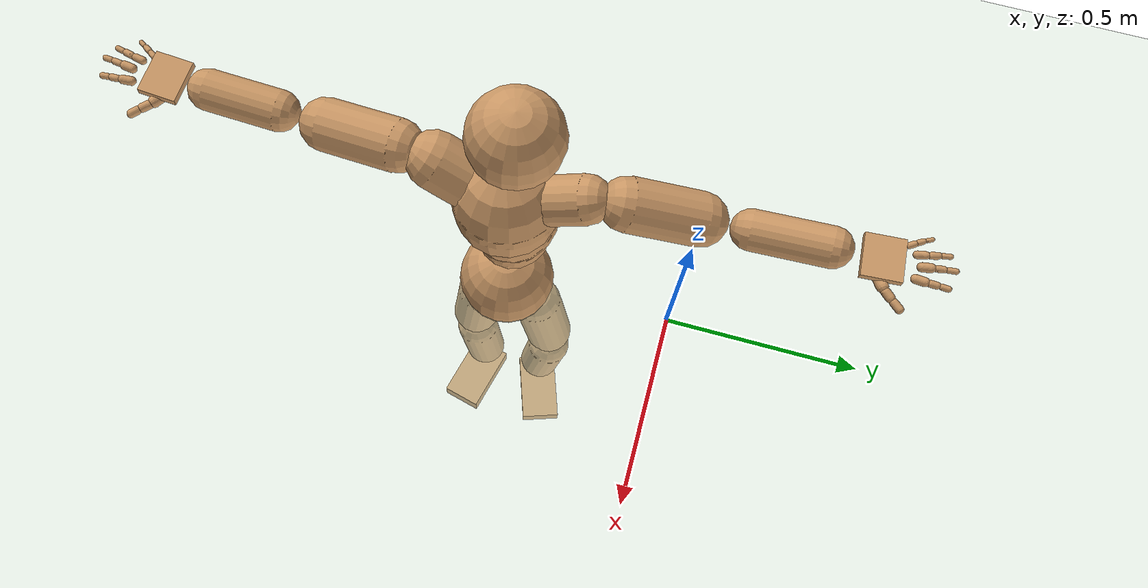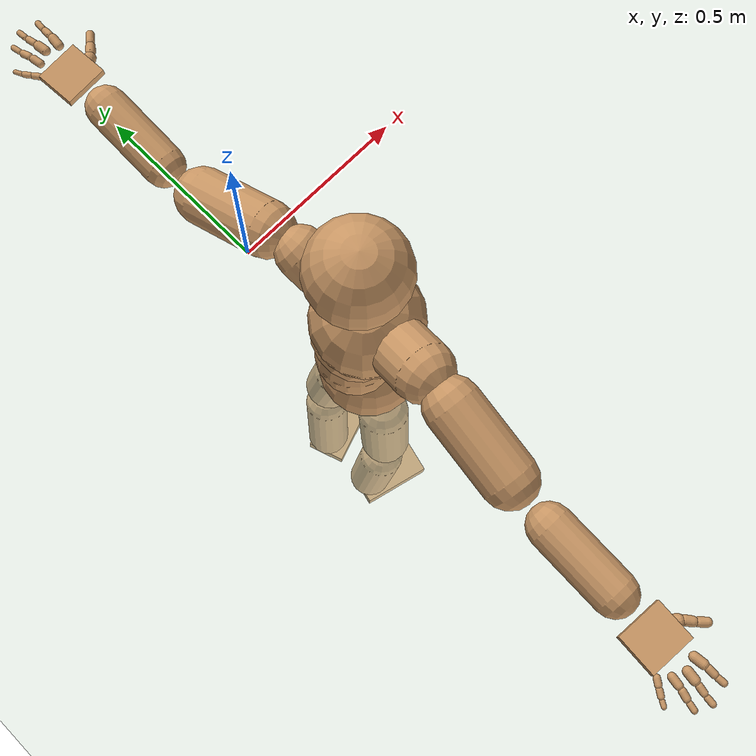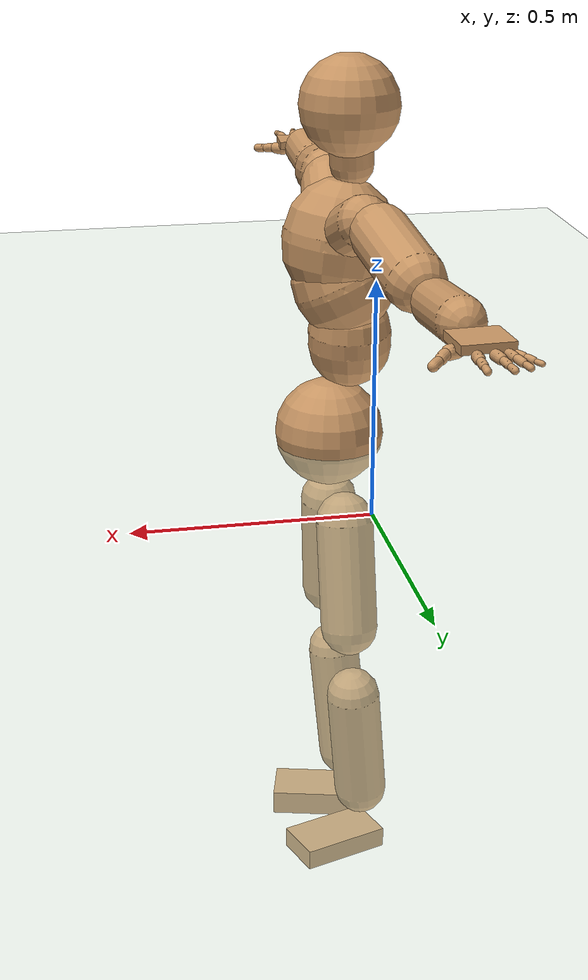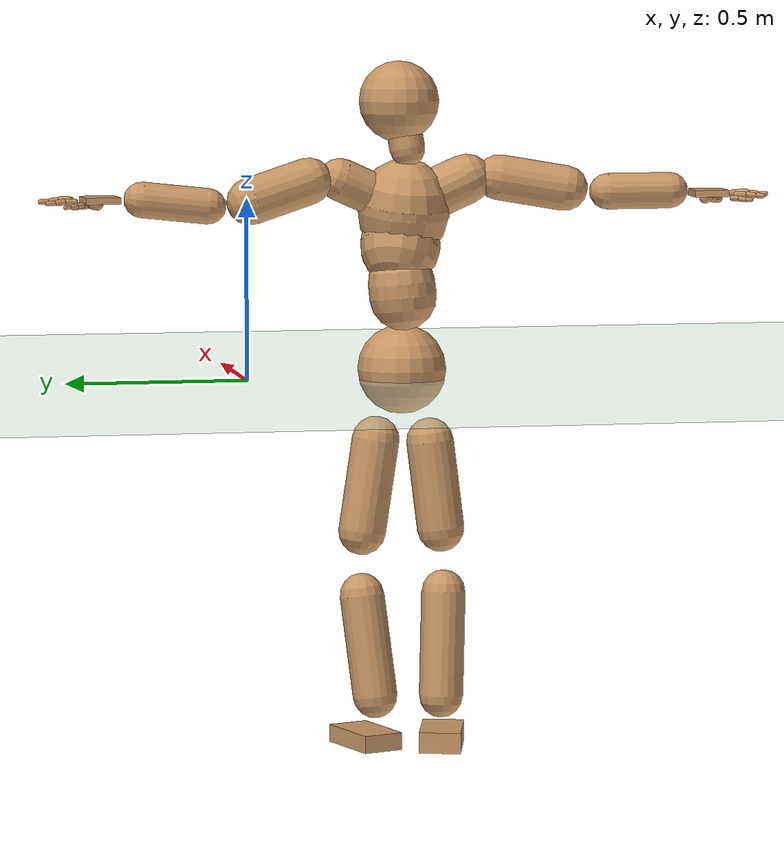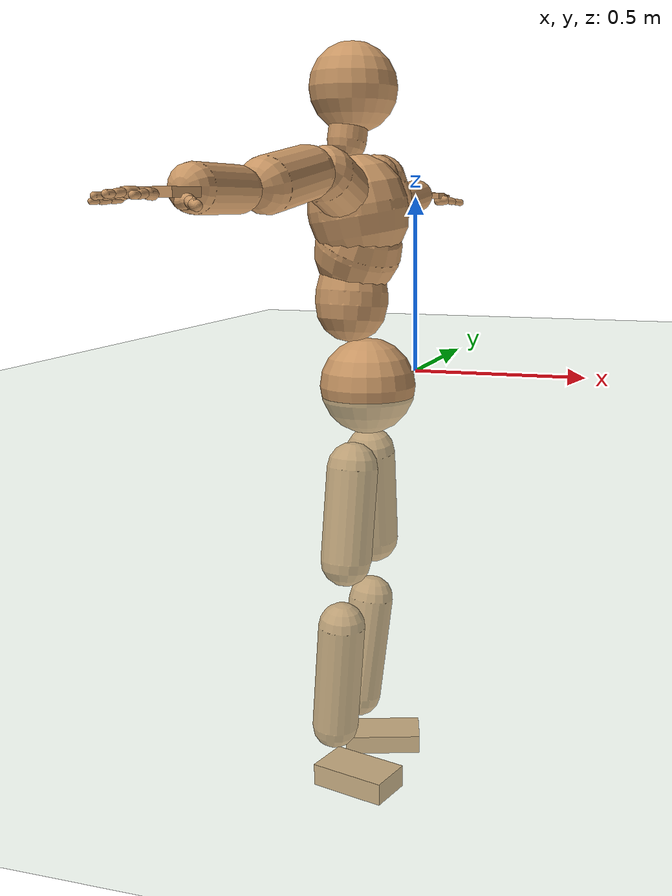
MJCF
<mujoco model="humanoid">
  <compiler coordinate="local" angle="radian"/>
  <default>
    <joint damping="0.0" armature="0.01" stiffness="0.0" limited="true"/>
    <geom conaffinity="1" condim="3" contype="7" margin="0.001" rgba="0.8 0.6 .4 1"/>
  </default>
  <asset>
    <texture type="skybox" builtin="gradient" rgb1=".4 .5 .6" rgb2="0 0 0" width="100" height="100"/>
    <texture builtin="flat" height="1278" mark="cross" markrgb="1 1 1" name="texgeom" random="0.01" rgb1="0.8 0.6 0.4" rgb2="0.8 0.6 0.4" type="cube" width="127"/>
    <texture builtin="checker" height="100" name="texplane" rgb1="0 0 0" rgb2="0.8 0.8 0.8" type="2d" width="100"/>
    <material name="MatPlane" reflectance="0.5" shininess="1" specular="1" texrepeat="60 60" texture="texplane"/>
    <material name="geom" texture="texgeom" texuniform="true"/>
  </asset>
  <worldbody>
    <light cutoff="100" diffuse="1 1 1" dir="-0 0 -1.3" directional="true" exponent="1" pos="0 0 1.3" specular=".1 .1 .1"/>
    <geom conaffinity="1" condim="3" name="floor" pos="0 0 0" rgba="0.8 0.9 0.8 1" size="100 100 .2" type="plane" material="MatPlane"/>
    <body name="Pelvis" pos="0.0019 -0.4314 0.0243">
      <freejoint name="Pelvis"/>
      <geom type="sphere" contype="1" conaffinity="1" density="500" size="0.1231" pos="0.0000 0.0000 0.0000" name="Pelvis"/>
      <body name="L_Hip" pos="-0.0202 0.0647 -0.1082">
        <joint name="L_Hip_x" type="hinge" pos="0 0 0" axis="1 0 0" stiffness="800" damping="80" armature="0.02" range="-180.0000 180.0000"/>
        <joint name="L_Hip_y" type="hinge" pos="0 0 0" axis="0 1 0" stiffness="800" damping="80" armature="0.02" range="-180.0000 180.0000"/>
        <joint name="L_Hip_z" type="hinge" pos="0 0 0" axis="0 0 1" stiffness="800" damping="80" armature="0.02" range="-180.0000 180.0000"/>
        <geom type="capsule" contype="1" conaffinity="1" density="500" fromto="-0.0017 0.0130 -0.0842 -0.0068 0.0519 -0.3370" size="0.0657" name="L_Hip"/>
        <body name="L_Knee" pos="-0.0084 0.0649 -0.4212">
          <joint name="L_Knee_x" type="hinge" pos="0 0 0" axis="1 0 0" stiffness="800" damping="80" armature="0.02" range="-180.0000 180.0000"/>
          <joint name="L_Knee_y" type="hinge" pos="0 0 0" axis="0 1 0" stiffness="800" damping="80" armature="0.02" range="-180.0000 180.0000"/>
          <joint name="L_Knee_z" type="hinge" pos="0 0 0" axis="0 0 1" stiffness="800" damping="80" armature="0.02" range="-180.0000 180.0000"/>
          <geom type="capsule" contype="1" conaffinity="1" density="500" fromto="-0.0094 -0.0104 -0.0928 -0.0374 -0.0417 -0.3711" size="0.0612" name="L_Knee"/>
          <body name="L_Ankle" pos="-0.0468 -0.0521 -0.4639">
            <joint name="L_Ankle_x" type="hinge" pos="0 0 0" axis="1 0 0" stiffness="800" damping="80" armature="0.02" range="-180.0000 180.0000"/>
            <joint name="L_Ankle_y" type="hinge" pos="0 0 0" axis="0 1 0" stiffness="800" damping="80" armature="0.02" range="-180.0000 180.0000"/>
            <joint name="L_Ankle_z" type="hinge" pos="0 0 0" axis="0 0 1" stiffness="800" damping="80" armature="0.02" range="-180.0000 180.0000"/>
            <geom type="box" contype="1" conaffinity="1" density="500" pos="0.0748 0.0253 -0.0344" size="0.1031 0.058 0.0241" quat="0.9868 0.0000 0.0000 0.1621" name="L_Ankle"/>
            <body name="L_Toe" pos="0.1496 0.0505 -0.0688">
              <joint name="L_Toe_x" type="hinge" pos="0 0 0" axis="1 0 0" stiffness="500" damping="50" armature="0.02" range="-180.0000 180.0000"/>
              <joint name="L_Toe_y" type="hinge" pos="0 0 0" axis="0 1 0" stiffness="500" damping="50" armature="0.02" range="-180.0000 180.0000"/>
              <joint name="L_Toe_z" type="hinge" pos="0 0 0" axis="0 0 1" stiffness="500" damping="50" armature="0.02" range="-180.0000 180.0000"/>
              <geom type="box" contype="1" conaffinity="1" density="500" pos="0.0000 0.0000 0.0332" size="0.0011 0.0027 0.0011" quat="0.9861 0.0000 0.0000 0.1659" name="L_Toe"/>
            </body>
          </body>
        </body>
      </body>
      <body name="R_Hip" pos="-0.0133 -0.067 -0.1203">
        <joint name="R_Hip_x" type="hinge" pos="0 0 0" axis="1 0 0" stiffness="800" damping="80" armature="0.02" range="-180.0000 180.0000"/>
        <joint name="R_Hip_y" type="hinge" pos="0 0 0" axis="0 1 0" stiffness="800" damping="80" armature="0.02" range="-180.0000 180.0000"/>
        <joint name="R_Hip_z" type="hinge" pos="0 0 0" axis="0 0 1" stiffness="800" damping="80" armature="0.02" range="-180.0000 180.0000"/>
        <geom type="capsule" contype="1" conaffinity="1" density="500" fromto="-0.0034 -0.0094 -0.0804 -0.0136 -0.0375 -0.3218" size="0.0655" name="R_Hip"/>
        <body name="R_Knee" pos="-0.017 -0.0469 -0.4022">
          <joint name="R_Knee_x" type="hinge" pos="0 0 0" axis="1 0 0" stiffness="800" damping="80" armature="0.02" range="-180.0000 180.0000"/>
          <joint name="R_Knee_y" type="hinge" pos="0 0 0" axis="0 1 0" stiffness="800" damping="80" armature="0.02" range="-180.0000 180.0000"/>
          <joint name="R_Knee_z" type="hinge" pos="0 0 0" axis="0 0 1" stiffness="800" damping="80" armature="0.02" range="-180.0000 180.0000"/>
          <geom type="capsule" contype="1" conaffinity="1" density="500" fromto="-0.0089 0.0039 -0.0958 -0.0354 0.0156 -0.3832" size="0.0608" name="R_Knee"/>
          <body name="R_Ankle" pos="-0.0443 0.0195 -0.479">
            <joint name="R_Ankle_x" type="hinge" pos="0 0 0" axis="1 0 0" stiffness="800" damping="80" armature="0.02" range="-180.0000 180.0000"/>
            <joint name="R_Ankle_y" type="hinge" pos="0 0 0" axis="0 1 0" stiffness="800" damping="80" armature="0.02" range="-180.0000 180.0000"/>
            <joint name="R_Ankle_z" type="hinge" pos="0 0 0" axis="0 0 1" stiffness="800" damping="80" armature="0.02" range="-180.0000 180.0000"/>
            <geom type="box" contype="1" conaffinity="1" density="500" pos="0.0783 -0.0199 -0.0333" size="0.1031 0.058 0.0289" quat="0.9923 0.0000 0.0000 -0.1241" name="R_Ankle"/>
            <body name="R_Toe" pos="0.1566 -0.0398 -0.0667">
              <joint name="R_Toe_x" type="hinge" pos="0 0 0" axis="1 0 0" stiffness="500" damping="50" armature="0.02" range="-180.0000 180.0000"/>
              <joint name="R_Toe_y" type="hinge" pos="0 0 0" axis="0 1 0" stiffness="500" damping="50" armature="0.02" range="-180.0000 180.0000"/>
              <joint name="R_Toe_z" type="hinge" pos="0 0 0" axis="0 0 1" stiffness="500" damping="50" armature="0.02" range="-180.0000 180.0000"/>
              <geom type="box" contype="1" conaffinity="1" density="500" pos="0.0000 0.0000 0.0275" size="0.0011 0.0027 0.0011" quat="0.9932 0.0000 0.0000 -0.1167" name="R_Toe"/>
            </body>
          </body>
        </body>
      </body>
      <body name="Torso" pos="-0.0463 -0.0019 0.1311">
        <joint name="Torso_x" type="hinge" pos="0 0 0" axis="1 0 0" stiffness="1000" damping="100" armature="0.02" range="-180.0000 180.0000"/>
        <joint name="Torso_y" type="hinge" pos="0 0 0" axis="0 1 0" stiffness="1000" damping="100" armature="0.02" range="-180.0000 180.0000"/>
        <joint name="Torso_z" type="hinge" pos="0 0 0" axis="0 0 1" stiffness="1000" damping="100" armature="0.02" range="-180.0000 180.0000"/>
        <geom type="capsule" contype="1" conaffinity="1" density="500" fromto="0.0035 0.0107 0.1089 0.0023 0.0071 0.0726" size="0.0929" name="Torso"/>
        <body name="Spine" pos="0.0058 0.0178 0.1816">
          <joint name="Spine_x" type="hinge" pos="0 0 0" axis="1 0 0" stiffness="1000" damping="100" armature="0.02" range="-180.0000 180.0000"/>
          <joint name="Spine_y" type="hinge" pos="0 0 0" axis="0 1 0" stiffness="1000" damping="100" armature="0.02" range="-180.0000 180.0000"/>
          <joint name="Spine_z" type="hinge" pos="0 0 0" axis="0 0 1" stiffness="1000" damping="100" armature="0.02" range="-180.0000 180.0000"/>
          <geom type="capsule" contype="1" conaffinity="1" density="500" fromto="0.0183 -0.0089 0.0405 0.0122 -0.0059 0.0270" size="0.1104" name="Spine"/>
          <body name="Chest" pos="0.0305 -0.0148 0.0675">
            <joint name="Chest_x" type="hinge" pos="0 0 0" axis="1 0 0" stiffness="1000" damping="100" armature="0.02" range="-180.0000 180.0000"/>
            <joint name="Chest_y" type="hinge" pos="0 0 0" axis="0 1 0" stiffness="1000" damping="100" armature="0.02" range="-180.0000 180.0000"/>
            <joint name="Chest_z" type="hinge" pos="0 0 0" axis="0 0 1" stiffness="1000" damping="100" armature="0.02" range="-180.0000 180.0000"/>
            <geom type="capsule" contype="1" conaffinity="1" density="500" fromto="-0.0120 -0.0043 0.0749 -0.0080 -0.0028 0.0499" size="0.1262" name="Chest"/>
            <body name="Neck" pos="-0.0399 -0.0132 0.1962">
              <joint name="Neck_x" type="hinge" pos="0 0 0" axis="1 0 0" stiffness="500" damping="50" armature="0.02" range="-180.0000 180.0000"/>
              <joint name="Neck_y" type="hinge" pos="0 0 0" axis="0 1 0" stiffness="500" damping="50" armature="0.02" range="-180.0000 180.0000"/>
              <joint name="Neck_z" type="hinge" pos="0 0 0" axis="0 0 1" stiffness="500" damping="50" armature="0.02" range="-180.0000 180.0000"/>
              <geom type="capsule" contype="1" conaffinity="1" density="500" fromto="0.0029 0.0054 0.0325 0.0115 0.0215 0.1299" size="0.0488" name="Neck"/>
              <body name="Head" pos="0.0143 0.0269 0.1623">
                <joint name="Head_x" type="hinge" pos="0 0 0" axis="1 0 0" stiffness="500" damping="50" armature="0.02" range="-180.0000 180.0000"/>
                <joint name="Head_y" type="hinge" pos="0 0 0" axis="0 1 0" stiffness="500" damping="50" armature="0.02" range="-180.0000 180.0000"/>
                <joint name="Head_z" type="hinge" pos="0 0 0" axis="0 0 1" stiffness="500" damping="50" armature="0.02" range="-180.0000 180.0000"/>
                <geom type="sphere" contype="1" conaffinity="1" density="500" size="0.1103" pos="0.0000 0.0000 0.0000" name="Head"/>
              </body>
            </body>
            <body name="L_Thorax" pos="-0.0088 0.0474 0.0886">
              <joint name="L_Thorax_x" type="hinge" pos="0 0 0" axis="1 0 0" stiffness="500" damping="50" armature="0.02" range="-180.0000 180.0000"/>
              <joint name="L_Thorax_y" type="hinge" pos="0 0 0" axis="0 1 0" stiffness="500" damping="50" armature="0.02" range="-180.0000 180.0000"/>
              <joint name="L_Thorax_z" type="hinge" pos="0 0 0" axis="0 0 1" stiffness="500" damping="50" armature="0.02" range="-180.0000 180.0000"/>
              <geom type="capsule" contype="1" conaffinity="1" density="500" fromto="-0.0036 0.0325 0.0145 -0.0145 0.1301 0.0579" size="0.0585" name="L_Thorax"/>
              <body name="L_Shoulder" pos="-0.0182 0.1626 0.0724">
                <joint name="L_Shoulder_x" type="hinge" pos="0 0 0" axis="1 0 0" stiffness="500" damping="50" armature="0.02" range="-180.0000 180.0000"/>
                <joint name="L_Shoulder_y" type="hinge" pos="0 0 0" axis="0 1 0" stiffness="500" damping="50" armature="0.02" range="-180.0000 180.0000"/>
                <joint name="L_Shoulder_z" type="hinge" pos="0 0 0" axis="0 0 1" stiffness="500" damping="50" armature="0.02" range="-180.0000 180.0000"/>
                <geom type="capsule" contype="1" conaffinity="1" density="500" fromto="-0.0106 0.0556 -0.0175 -0.0424 0.2224 -0.0698" size="0.064" name="L_Shoulder"/>
                <body name="L_Elbow" pos="-0.053 0.278 -0.0873">
                  <joint name="L_Elbow_x" type="hinge" pos="0 0 0" axis="1 0 0" stiffness="500" damping="50" armature="0.02" range="-720.0000 720.0000"/>
                  <joint name="L_Elbow_y" type="hinge" pos="0 0 0" axis="0 1 0" stiffness="500" damping="50" armature="0.02" range="-720.0000 720.0000"/>
                  <joint name="L_Elbow_z" type="hinge" pos="0 0 0" axis="0 0 1" stiffness="500" damping="50" armature="0.02" range="-720.0000 720.0000"/>
                  <geom type="capsule" contype="1" conaffinity="1" density="500" fromto="0.0004 0.0603 0.0065 0.0018 0.2412 0.0260" size="0.0485" name="L_Elbow"/>
                  <body name="L_Wrist" pos="0.0022 0.3015 0.0326">
                    <joint name="L_Wrist_x" type="hinge" pos="0 0 0" axis="1 0 0" stiffness="300" damping="30" armature="0.02" range="-180.0000 180.0000"/>
                    <joint name="L_Wrist_y" type="hinge" pos="0 0 0" axis="0 1 0" stiffness="300" damping="30" armature="0.02" range="-180.0000 180.0000"/>
                    <joint name="L_Wrist_z" type="hinge" pos="0 0 0" axis="0 0 1" stiffness="300" damping="30" armature="0.02" range="-180.0000 180.0000"/>
                    <geom type="box" contype="1" conaffinity="1" density="500" pos="-0.0034 0.0523 -0.0062" size="0.0473 0.0521 0.0092" quat="0.7294 0.0000 0.0000 -0.6841" name="L_Wrist"/>
                    <body name="L_Index1" pos="0.0236 0.1223 -0.0088">
                      <joint name="L_Index1_x" type="hinge" pos="0 0 0" axis="1 0 0" stiffness="100" damping="10" armature="0.02" range="-180.0000 180.0000"/>
                      <joint name="L_Index1_y" type="hinge" pos="0 0 0" axis="0 1 0" stiffness="100" damping="10" armature="0.02" range="-180.0000 180.0000"/>
                      <joint name="L_Index1_z" type="hinge" pos="0 0 0" axis="0 0 1" stiffness="100" damping="10" armature="0.02" range="-180.0000 180.0000"/>
                      <geom type="capsule" contype="1" conaffinity="1" density="500" fromto="0.0007 0.0071 0.0004 0.0029 0.0286 0.0017" size="0.0107" name="L_Index1"/>
                      <body name="L_Index2" pos="0.0036 0.0357 0.0021">
                        <joint name="L_Index2_x" type="hinge" pos="0 0 0" axis="1 0 0" stiffness="100" damping="10" armature="0.02" range="-180.0000 180.0000"/>
                        <joint name="L_Index2_y" type="hinge" pos="0 0 0" axis="0 1 0" stiffness="100" damping="10" armature="0.02" range="-180.0000 180.0000"/>
                        <joint name="L_Index2_z" type="hinge" pos="0 0 0" axis="0 0 1" stiffness="100" damping="10" armature="0.02" range="-180.0000 180.0000"/>
                        <geom type="capsule" contype="1" conaffinity="1" density="500" fromto="-0.0001 0.0050 -0.0006 -0.0004 0.0200 -0.0023" size="0.0085" name="L_Index2"/>
                        <body name="L_Index3" pos="-0.0005 0.025 -0.0028">
                          <joint name="L_Index3_x" type="hinge" pos="0 0 0" axis="1 0 0" stiffness="100" damping="10" armature="0.02" range="-180.0000 180.0000"/>
                          <joint name="L_Index3_y" type="hinge" pos="0 0 0" axis="0 1 0" stiffness="100" damping="10" armature="0.02" range="-180.0000 180.0000"/>
                          <joint name="L_Index3_z" type="hinge" pos="0 0 0" axis="0 0 1" stiffness="100" damping="10" armature="0.02" range="-180.0000 180.0000"/>
                          <geom type="capsule" contype="1" conaffinity="1" density="500" fromto="0.0003 0.0054 -0.0002 0.0012 0.0216 -0.0007" size="0.0072" name="L_Index3"/>
                        </body>
                      </body>
                    </body>
                    <body name="L_Middle1" pos="-0.0046 0.1312 -0.0055">
                      <joint name="L_Middle1_x" type="hinge" pos="0 0 0" axis="1 0 0" stiffness="100" damping="10" armature="0.02" range="-180.0000 180.0000"/>
                      <joint name="L_Middle1_y" type="hinge" pos="0 0 0" axis="0 1 0" stiffness="100" damping="10" armature="0.02" range="-180.0000 180.0000"/>
                      <joint name="L_Middle1_z" type="hinge" pos="0 0 0" axis="0 0 1" stiffness="100" damping="10" armature="0.02" range="-180.0000 180.0000"/>
                      <geom type="capsule" contype="1" conaffinity="1" density="500" fromto="-0.0010 0.0068 0.0002 -0.0040 0.0273 0.0006" size="0.0109" name="L_Middle1"/>
                      <body name="L_Middle2" pos="-0.005 0.0341 0.0008">
                        <joint name="L_Middle2_x" type="hinge" pos="0 0 0" axis="1 0 0" stiffness="100" damping="10" armature="0.02" range="-180.0000 180.0000"/>
                        <joint name="L_Middle2_y" type="hinge" pos="0 0 0" axis="0 1 0" stiffness="100" damping="10" armature="0.02" range="-180.0000 180.0000"/>
                        <joint name="L_Middle2_z" type="hinge" pos="0 0 0" axis="0 0 1" stiffness="100" damping="10" armature="0.02" range="-180.0000 180.0000"/>
                        <geom type="capsule" contype="1" conaffinity="1" density="500" fromto="-0.0010 0.0052 -0.0006 -0.0039 0.0209 -0.0022" size="0.008" name="L_Middle2"/>
                        <body name="L_Middle3" pos="-0.0049 0.0261 -0.0028">
                          <joint name="L_Middle3_x" type="hinge" pos="0 0 0" axis="1 0 0" stiffness="100" damping="10" armature="0.02" range="-180.0000 180.0000"/>
                          <joint name="L_Middle3_y" type="hinge" pos="0 0 0" axis="0 1 0" stiffness="100" damping="10" armature="0.02" range="-180.0000 180.0000"/>
                          <joint name="L_Middle3_z" type="hinge" pos="0 0 0" axis="0 0 1" stiffness="100" damping="10" armature="0.02" range="-180.0000 180.0000"/>
                          <geom type="capsule" contype="1" conaffinity="1" density="500" fromto="-0.0006 0.0056 -0.0002 -0.0023 0.0225 -0.0006" size="0.0069" name="L_Middle3"/>
                        </body>
                      </body>
                    </body>
                    <body name="L_Pinky1" pos="-0.0516 0.1022 -0.016">
                      <joint name="L_Pinky1_x" type="hinge" pos="0 0 0" axis="1 0 0" stiffness="100" damping="10" armature="0.02" range="-180.0000 180.0000"/>
                      <joint name="L_Pinky1_y" type="hinge" pos="0 0 0" axis="0 1 0" stiffness="100" damping="10" armature="0.02" range="-180.0000 180.0000"/>
                      <joint name="L_Pinky1_z" type="hinge" pos="0 0 0" axis="0 0 1" stiffness="100" damping="10" armature="0.02" range="-180.0000 180.0000"/>
                      <geom type="capsule" contype="1" conaffinity="1" density="500" fromto="-0.0026 0.0037 -0.0004 -0.0103 0.0147 -0.0015" size="0.0076" name="L_Pinky1"/>
                      <body name="L_Pinky2" pos="-0.0128 0.0184 -0.0018">
                        <joint name="L_Pinky2_x" type="hinge" pos="0 0 0" axis="1 0 0" stiffness="100" damping="10" armature="0.02" range="-180.0000 180.0000"/>
                        <joint name="L_Pinky2_y" type="hinge" pos="0 0 0" axis="0 1 0" stiffness="100" damping="10" armature="0.02" range="-180.0000 180.0000"/>
                        <joint name="L_Pinky2_z" type="hinge" pos="0 0 0" axis="0 0 1" stiffness="100" damping="10" armature="0.02" range="-180.0000 180.0000"/>
                        <geom type="capsule" contype="1" conaffinity="1" density="500" fromto="-0.0024 0.0036 -0.0005 -0.0095 0.0143 -0.0019" size="0.0071" name="L_Pinky2"/>
                        <body name="L_Pinky3" pos="-0.0118 0.0179 -0.0023">
                          <joint name="L_Pinky3_x" type="hinge" pos="0 0 0" axis="1 0 0" stiffness="100" damping="10" armature="0.02" range="-180.0000 180.0000"/>
                          <joint name="L_Pinky3_y" type="hinge" pos="0 0 0" axis="0 1 0" stiffness="100" damping="10" armature="0.02" range="-180.0000 180.0000"/>
                          <joint name="L_Pinky3_z" type="hinge" pos="0 0 0" axis="0 0 1" stiffness="100" damping="10" armature="0.02" range="-180.0000 180.0000"/>
                          <geom type="capsule" contype="1" conaffinity="1" density="500" fromto="-0.0020 0.0040 -0.0001 -0.0079 0.0159 -0.0003" size="0.0054" name="L_Pinky3"/>
                        </body>
                      </body>
                    </body>
                    <body name="L_Ring1" pos="-0.0326 0.1177 -0.0091">
                      <joint name="L_Ring1_x" type="hinge" pos="0 0 0" axis="1 0 0" stiffness="100" damping="10" armature="0.02" range="-180.0000 180.0000"/>
                      <joint name="L_Ring1_y" type="hinge" pos="0 0 0" axis="0 1 0" stiffness="100" damping="10" armature="0.02" range="-180.0000 180.0000"/>
                      <joint name="L_Ring1_z" type="hinge" pos="0 0 0" axis="0 0 1" stiffness="100" damping="10" armature="0.02" range="-180.0000 180.0000"/>
                      <geom type="capsule" contype="1" conaffinity="1" density="500" fromto="-0.0011 0.0064 0.0002 -0.0045 0.0256 0.0008" size="0.0092" name="L_Ring1"/>
                      <body name="L_Ring2" pos="-0.0056 0.032 0.001">
                        <joint name="L_Ring2_x" type="hinge" pos="0 0 0" axis="1 0 0" stiffness="100" damping="10" armature="0.02" range="-180.0000 180.0000"/>
                        <joint name="L_Ring2_y" type="hinge" pos="0 0 0" axis="0 1 0" stiffness="100" damping="10" armature="0.02" range="-180.0000 180.0000"/>
                        <joint name="L_Ring2_z" type="hinge" pos="0 0 0" axis="0 0 1" stiffness="100" damping="10" armature="0.02" range="-180.0000 180.0000"/>
                        <geom type="capsule" contype="1" conaffinity="1" density="500" fromto="-0.0015 0.0051 -0.0005 -0.0059 0.0205 -0.0021" size="0.0084" name="L_Ring2"/>
                        <body name="L_Ring3" pos="-0.0074 0.0256 -0.0026">
                          <joint name="L_Ring3_x" type="hinge" pos="0 0 0" axis="1 0 0" stiffness="100" damping="10" armature="0.02" range="-180.0000 180.0000"/>
                          <joint name="L_Ring3_y" type="hinge" pos="0 0 0" axis="0 1 0" stiffness="100" damping="10" armature="0.02" range="-180.0000 180.0000"/>
                          <joint name="L_Ring3_z" type="hinge" pos="0 0 0" axis="0 0 1" stiffness="100" damping="10" armature="0.02" range="-180.0000 180.0000"/>
                          <geom type="capsule" contype="1" conaffinity="1" density="500" fromto="-0.0011 0.0055 -0.0001 -0.0043 0.0221 -0.0005" size="0.0065" name="L_Ring3"/>
                        </body>
                      </body>
                    </body>
                    <body name="L_Thumb1" pos="0.0317 0.0495 -0.0222">
                      <joint name="L_Thumb1_x" type="hinge" pos="0 0 0" axis="1 0 0" stiffness="100" damping="10" armature="0.02" range="-180.0000 180.0000"/>
                      <joint name="L_Thumb1_y" type="hinge" pos="0 0 0" axis="0 1 0" stiffness="100" damping="10" armature="0.02" range="-180.0000 180.0000"/>
                      <joint name="L_Thumb1_z" type="hinge" pos="0 0 0" axis="0 0 1" stiffness="100" damping="10" armature="0.02" range="-180.0000 180.0000"/>
                      <geom type="capsule" contype="1" conaffinity="1" density="500" fromto="0.0060 0.0038 0.0004 0.0239 0.0154 0.0016" size="0.0144" name="L_Thumb1"/>
                      <body name="L_Thumb2" pos="0.0299 0.0192 0.0021">
                        <joint name="L_Thumb2_x" type="hinge" pos="0 0 0" axis="1 0 0" stiffness="100" damping="10" armature="0.02" range="-180.0000 180.0000"/>
                        <joint name="L_Thumb2_y" type="hinge" pos="0 0 0" axis="0 1 0" stiffness="100" damping="10" armature="0.02" range="-180.0000 180.0000"/>
                        <joint name="L_Thumb2_z" type="hinge" pos="0 0 0" axis="0 0 1" stiffness="100" damping="10" armature="0.02" range="-180.0000 180.0000"/>
                        <geom type="capsule" contype="1" conaffinity="1" density="500" fromto="0.0037 0.0046 -0.0010 0.0147 0.0185 -0.0041" size="0.0112" name="L_Thumb2"/>
                        <body name="L_Thumb3" pos="0.0183 0.0231 -0.0052">
                          <joint name="L_Thumb3_x" type="hinge" pos="0 0 0" axis="1 0 0" stiffness="100" damping="10" armature="0.02" range="-180.0000 180.0000"/>
                          <joint name="L_Thumb3_y" type="hinge" pos="0 0 0" axis="0 1 0" stiffness="100" damping="10" armature="0.02" range="-180.0000 180.0000"/>
                          <joint name="L_Thumb3_z" type="hinge" pos="0 0 0" axis="0 0 1" stiffness="100" damping="10" armature="0.02" range="-180.0000 180.0000"/>
                          <geom type="capsule" contype="1" conaffinity="1" density="500" fromto="0.0041 0.0050 -0.0006 0.0163 0.0201 -0.0025" size="0.0101" name="L_Thumb3"/>
                        </body>
                      </body>
                    </body>
                  </body>
                </body>
              </body>
            </body>
            <body name="R_Thorax" pos="-0.0115 -0.0556 0.0897">
              <joint name="R_Thorax_x" type="hinge" pos="0 0 0" axis="1 0 0" stiffness="500" damping="50" armature="0.02" range="-180.0000 180.0000"/>
              <joint name="R_Thorax_y" type="hinge" pos="0 0 0" axis="0 1 0" stiffness="500" damping="50" armature="0.02" range="-180.0000 180.0000"/>
              <joint name="R_Thorax_z" type="hinge" pos="0 0 0" axis="0 0 1" stiffness="500" damping="50" armature="0.02" range="-180.0000 180.0000"/>
              <geom type="capsule" contype="1" conaffinity="1" density="500" fromto="-0.0038 -0.0298 0.0138 -0.0151 -0.1191 0.0552" size="0.0692" name="R_Thorax"/>
              <body name="R_Shoulder" pos="-0.0188 -0.1489 0.069">
                <joint name="R_Shoulder_x" type="hinge" pos="0 0 0" axis="1 0 0" stiffness="500" damping="50" armature="0.02" range="-180.0000 180.0000"/>
                <joint name="R_Shoulder_y" type="hinge" pos="0 0 0" axis="0 1 0" stiffness="500" damping="50" armature="0.02" range="-180.0000 180.0000"/>
                <joint name="R_Shoulder_z" type="hinge" pos="0 0 0" axis="0 0 1" stiffness="500" damping="50" armature="0.02" range="-180.0000 180.0000"/>
                <geom type="capsule" contype="1" conaffinity="1" density="500" fromto="-0.0070 -0.0600 -0.0101 -0.0279 -0.2402 -0.0403" size="0.0631" name="R_Shoulder"/>
                <body name="R_Elbow" pos="-0.0349 -0.3002 -0.0504">
                  <joint name="R_Elbow_x" type="hinge" pos="0 0 0" axis="1 0 0" stiffness="500" damping="50" armature="0.02" range="-720.0000 720.0000"/>
                  <joint name="R_Elbow_y" type="hinge" pos="0 0 0" axis="0 1 0" stiffness="500" damping="50" armature="0.02" range="-720.0000 720.0000"/>
                  <joint name="R_Elbow_z" type="hinge" pos="0 0 0" axis="0 0 1" stiffness="500" damping="50" armature="0.02" range="-720.0000 720.0000"/>
                  <geom type="capsule" contype="1" conaffinity="1" density="500" fromto="-0.0023 -0.0584 0.0004 -0.0094 -0.2336 0.0018" size="0.0497" name="R_Elbow"/>
                  <body name="R_Wrist" pos="-0.0117 -0.292 0.0022">
                    <joint name="R_Wrist_x" type="hinge" pos="0 0 0" axis="1 0 0" stiffness="300" damping="30" armature="0.02" range="-180.0000 180.0000"/>
                    <joint name="R_Wrist_y" type="hinge" pos="0 0 0" axis="0 1 0" stiffness="300" damping="30" armature="0.02" range="-180.0000 180.0000"/>
                    <joint name="R_Wrist_z" type="hinge" pos="0 0 0" axis="0 0 1" stiffness="300" damping="30" armature="0.02" range="-180.0000 180.0000"/>
                    <geom type="box" contype="1" conaffinity="1" density="500" pos="-0.0038 -0.0518 -0.0083" size="0.0473 0.0536 0.0095" quat="0.7325 0.0000 0.0000 0.6808" name="R_Wrist"/>
                    <body name="R_Index1" pos="0.0227 -0.1214 -0.013">
                      <joint name="R_Index1_x" type="hinge" pos="0 0 0" axis="1 0 0" stiffness="100" damping="10" armature="0.02" range="-180.0000 180.0000"/>
                      <joint name="R_Index1_y" type="hinge" pos="0 0 0" axis="0 1 0" stiffness="100" damping="10" armature="0.02" range="-180.0000 180.0000"/>
                      <joint name="R_Index1_z" type="hinge" pos="0 0 0" axis="0 0 1" stiffness="100" damping="10" armature="0.02" range="-180.0000 180.0000"/>
                      <geom type="capsule" contype="1" conaffinity="1" density="500" fromto="0.0007 -0.0071 0.0004 0.0029 -0.0286 0.0017" size="0.0107" name="R_Index1"/>
                      <body name="R_Index2" pos="0.0037 -0.0357 0.0021">
                        <joint name="R_Index2_x" type="hinge" pos="0 0 0" axis="1 0 0" stiffness="100" damping="10" armature="0.02" range="-180.0000 180.0000"/>
                        <joint name="R_Index2_y" type="hinge" pos="0 0 0" axis="0 1 0" stiffness="100" damping="10" armature="0.02" range="-180.0000 180.0000"/>
                        <joint name="R_Index2_z" type="hinge" pos="0 0 0" axis="0 0 1" stiffness="100" damping="10" armature="0.02" range="-180.0000 180.0000"/>
                        <geom type="capsule" contype="1" conaffinity="1" density="500" fromto="-0.0001 -0.0050 -0.0006 -0.0004 -0.0200 -0.0023" size="0.0085" name="R_Index2"/>
                        <body name="R_Index3" pos="-0.0005 -0.025 -0.0028">
                          <joint name="R_Index3_x" type="hinge" pos="0 0 0" axis="1 0 0" stiffness="100" damping="10" armature="0.02" range="-180.0000 180.0000"/>
                          <joint name="R_Index3_y" type="hinge" pos="0 0 0" axis="0 1 0" stiffness="100" damping="10" armature="0.02" range="-180.0000 180.0000"/>
                          <joint name="R_Index3_z" type="hinge" pos="0 0 0" axis="0 0 1" stiffness="100" damping="10" armature="0.02" range="-180.0000 180.0000"/>
                          <geom type="capsule" contype="1" conaffinity="1" density="500" fromto="0.0003 -0.0046 -0.0002 0.0012 -0.0184 -0.0007" size="0.0075" name="R_Index3"/>
                        </body>
                      </body>
                    </body>
                    <body name="R_Middle1" pos="-0.0055 -0.1303 -0.0097">
                      <joint name="R_Middle1_x" type="hinge" pos="0 0 0" axis="1 0 0" stiffness="100" damping="10" armature="0.02" range="-180.0000 180.0000"/>
                      <joint name="R_Middle1_y" type="hinge" pos="0 0 0" axis="0 1 0" stiffness="100" damping="10" armature="0.02" range="-180.0000 180.0000"/>
                      <joint name="R_Middle1_z" type="hinge" pos="0 0 0" axis="0 0 1" stiffness="100" damping="10" armature="0.02" range="-180.0000 180.0000"/>
                      <geom type="capsule" contype="1" conaffinity="1" density="500" fromto="-0.0010 -0.0068 0.0002 -0.0040 -0.0273 0.0006" size="0.0109" name="R_Middle1"/>
                      <body name="R_Middle2" pos="-0.005 -0.0341 0.0008">
                        <joint name="R_Middle2_x" type="hinge" pos="0 0 0" axis="1 0 0" stiffness="100" damping="10" armature="0.02" range="-180.0000 180.0000"/>
                        <joint name="R_Middle2_y" type="hinge" pos="0 0 0" axis="0 1 0" stiffness="100" damping="10" armature="0.02" range="-180.0000 180.0000"/>
                        <joint name="R_Middle2_z" type="hinge" pos="0 0 0" axis="0 0 1" stiffness="100" damping="10" armature="0.02" range="-180.0000 180.0000"/>
                        <geom type="capsule" contype="1" conaffinity="1" density="500" fromto="-0.0010 -0.0052 -0.0006 -0.0039 -0.0209 -0.0022" size="0.008" name="R_Middle2"/>
                        <body name="R_Middle3" pos="-0.0049 -0.0261 -0.0028">
                          <joint name="R_Middle3_x" type="hinge" pos="0 0 0" axis="1 0 0" stiffness="100" damping="10" armature="0.02" range="-180.0000 180.0000"/>
                          <joint name="R_Middle3_y" type="hinge" pos="0 0 0" axis="0 1 0" stiffness="100" damping="10" armature="0.02" range="-180.0000 180.0000"/>
                          <joint name="R_Middle3_z" type="hinge" pos="0 0 0" axis="0 0 1" stiffness="100" damping="10" armature="0.02" range="-180.0000 180.0000"/>
                          <geom type="capsule" contype="1" conaffinity="1" density="500" fromto="-0.0006 -0.0048 -0.0002 -0.0023 -0.0193 -0.0006" size="0.0072" name="R_Middle3"/>
                        </body>
                      </body>
                    </body>
                    <body name="R_Pinky1" pos="-0.0525 -0.1014 -0.0202">
                      <joint name="R_Pinky1_x" type="hinge" pos="0 0 0" axis="1 0 0" stiffness="100" damping="10" armature="0.02" range="-180.0000 180.0000"/>
                      <joint name="R_Pinky1_y" type="hinge" pos="0 0 0" axis="0 1 0" stiffness="100" damping="10" armature="0.02" range="-180.0000 180.0000"/>
                      <joint name="R_Pinky1_z" type="hinge" pos="0 0 0" axis="0 0 1" stiffness="100" damping="10" armature="0.02" range="-180.0000 180.0000"/>
                      <geom type="capsule" contype="1" conaffinity="1" density="500" fromto="-0.0026 -0.0037 -0.0004 -0.0103 -0.0147 -0.0015" size="0.0076" name="R_Pinky1"/>
                      <body name="R_Pinky2" pos="-0.0128 -0.0184 -0.0018">
                        <joint name="R_Pinky2_x" type="hinge" pos="0 0 0" axis="1 0 0" stiffness="100" damping="10" armature="0.02" range="-180.0000 180.0000"/>
                        <joint name="R_Pinky2_y" type="hinge" pos="0 0 0" axis="0 1 0" stiffness="100" damping="10" armature="0.02" range="-180.0000 180.0000"/>
                        <joint name="R_Pinky2_z" type="hinge" pos="0 0 0" axis="0 0 1" stiffness="100" damping="10" armature="0.02" range="-180.0000 180.0000"/>
                        <geom type="capsule" contype="1" conaffinity="1" density="500" fromto="-0.0024 -0.0036 -0.0005 -0.0095 -0.0143 -0.0019" size="0.0071" name="R_Pinky2"/>
                        <body name="R_Pinky3" pos="-0.0118 -0.0179 -0.0023">
                          <joint name="R_Pinky3_x" type="hinge" pos="0 0 0" axis="1 0 0" stiffness="100" damping="10" armature="0.02" range="-180.0000 180.0000"/>
                          <joint name="R_Pinky3_y" type="hinge" pos="0 0 0" axis="0 1 0" stiffness="100" damping="10" armature="0.02" range="-180.0000 180.0000"/>
                          <joint name="R_Pinky3_z" type="hinge" pos="0 0 0" axis="0 0 1" stiffness="100" damping="10" armature="0.02" range="-180.0000 180.0000"/>
                          <geom type="capsule" contype="1" conaffinity="1" density="500" fromto="-0.0020 -0.0032 -0.0001 -0.0079 -0.0127 -0.0003" size="0.0056" name="R_Pinky3"/>
                        </body>
                      </body>
                    </body>
                    <body name="R_Ring1" pos="-0.0334 -0.1168 -0.0133">
                      <joint name="R_Ring1_x" type="hinge" pos="0 0 0" axis="1 0 0" stiffness="100" damping="10" armature="0.02" range="-180.0000 180.0000"/>
                      <joint name="R_Ring1_y" type="hinge" pos="0 0 0" axis="0 1 0" stiffness="100" damping="10" armature="0.02" range="-180.0000 180.0000"/>
                      <joint name="R_Ring1_z" type="hinge" pos="0 0 0" axis="0 0 1" stiffness="100" damping="10" armature="0.02" range="-180.0000 180.0000"/>
                      <geom type="capsule" contype="1" conaffinity="1" density="500" fromto="-0.0011 -0.0064 0.0002 -0.0045 -0.0256 0.0008" size="0.0092" name="R_Ring1"/>
                      <body name="R_Ring2" pos="-0.0056 -0.032 0.001">
                        <joint name="R_Ring2_x" type="hinge" pos="0 0 0" axis="1 0 0" stiffness="100" damping="10" armature="0.02" range="-180.0000 180.0000"/>
                        <joint name="R_Ring2_y" type="hinge" pos="0 0 0" axis="0 1 0" stiffness="100" damping="10" armature="0.02" range="-180.0000 180.0000"/>
                        <joint name="R_Ring2_z" type="hinge" pos="0 0 0" axis="0 0 1" stiffness="100" damping="10" armature="0.02" range="-180.0000 180.0000"/>
                        <geom type="capsule" contype="1" conaffinity="1" density="500" fromto="-0.0015 -0.0051 -0.0005 -0.0059 -0.0205 -0.0021" size="0.0084" name="R_Ring2"/>
                        <body name="R_Ring3" pos="-0.0074 -0.0256 -0.0026">
                          <joint name="R_Ring3_x" type="hinge" pos="0 0 0" axis="1 0 0" stiffness="100" damping="10" armature="0.02" range="-180.0000 180.0000"/>
                          <joint name="R_Ring3_y" type="hinge" pos="0 0 0" axis="0 1 0" stiffness="100" damping="10" armature="0.02" range="-180.0000 180.0000"/>
                          <joint name="R_Ring3_z" type="hinge" pos="0 0 0" axis="0 0 1" stiffness="100" damping="10" armature="0.02" range="-180.0000 180.0000"/>
                          <geom type="capsule" contype="1" conaffinity="1" density="500" fromto="-0.0011 -0.0047 -0.0001 -0.0043 -0.0189 -0.0005" size="0.0068" name="R_Ring3"/>
                        </body>
                      </body>
                    </body>
                    <body name="R_Thumb1" pos="0.0308 -0.0486 -0.0264">
                      <joint name="R_Thumb1_x" type="hinge" pos="0 0 0" axis="1 0 0" stiffness="100" damping="10" armature="0.02" range="-180.0000 180.0000"/>
                      <joint name="R_Thumb1_y" type="hinge" pos="0 0 0" axis="0 1 0" stiffness="100" damping="10" armature="0.02" range="-180.0000 180.0000"/>
                      <joint name="R_Thumb1_z" type="hinge" pos="0 0 0" axis="0 0 1" stiffness="100" damping="10" armature="0.02" range="-180.0000 180.0000"/>
                      <geom type="capsule" contype="1" conaffinity="1" density="500" fromto="0.0060 -0.0038 0.0004 0.0239 -0.0154 0.0017" size="0.0144" name="R_Thumb1"/>
                      <body name="R_Thumb2" pos="0.0299 -0.0192 0.0021">
                        <joint name="R_Thumb2_x" type="hinge" pos="0 0 0" axis="1 0 0" stiffness="100" damping="10" armature="0.02" range="-180.0000 180.0000"/>
                        <joint name="R_Thumb2_y" type="hinge" pos="0 0 0" axis="0 1 0" stiffness="100" damping="10" armature="0.02" range="-180.0000 180.0000"/>
                        <joint name="R_Thumb2_z" type="hinge" pos="0 0 0" axis="0 0 1" stiffness="100" damping="10" armature="0.02" range="-180.0000 180.0000"/>
                        <geom type="capsule" contype="1" conaffinity="1" density="500" fromto="0.0037 -0.0046 -0.0010 0.0147 -0.0185 -0.0041" size="0.0112" name="R_Thumb2"/>
                        <body name="R_Thumb3" pos="0.0183 -0.0231 -0.0052">
                          <joint name="R_Thumb3_x" type="hinge" pos="0 0 0" axis="1 0 0" stiffness="100" damping="10" armature="0.02" range="-180.0000 180.0000"/>
                          <joint name="R_Thumb3_y" type="hinge" pos="0 0 0" axis="0 1 0" stiffness="100" damping="10" armature="0.02" range="-180.0000 180.0000"/>
                          <joint name="R_Thumb3_z" type="hinge" pos="0 0 0" axis="0 0 1" stiffness="100" damping="10" armature="0.02" range="-180.0000 180.0000"/>
                          <geom type="capsule" contype="1" conaffinity="1" density="500" fromto="0.0041 -0.0042 -0.0006 0.0163 -0.0169 -0.0025" size="0.0103" name="R_Thumb3"/>
                        </body>
                      </body>
                    </body>
                  </body>
                </body>
              </body>
            </body>
          </body>
        </body>
      </body>
    </body>
  </worldbody>
  <actuator>
    <motor name="L_Hip_x" joint="L_Hip_x" gear="500"/>
    <motor name="L_Hip_y" joint="L_Hip_y" gear="500"/>
    <motor name="L_Hip_z" joint="L_Hip_z" gear="500"/>
    <motor name="L_Knee_x" joint="L_Knee_x" gear="500"/>
    <motor name="L_Knee_y" joint="L_Knee_y" gear="500"/>
    <motor name="L_Knee_z" joint="L_Knee_z" gear="500"/>
    <motor name="L_Ankle_x" joint="L_Ankle_x" gear="500"/>
    <motor name="L_Ankle_y" joint="L_Ankle_y" gear="500"/>
    <motor name="L_Ankle_z" joint="L_Ankle_z" gear="500"/>
    <motor name="L_Toe_x" joint="L_Toe_x" gear="500"/>
    <motor name="L_Toe_y" joint="L_Toe_y" gear="500"/>
    <motor name="L_Toe_z" joint="L_Toe_z" gear="500"/>
    <motor name="R_Hip_x" joint="R_Hip_x" gear="500"/>
    <motor name="R_Hip_y" joint="R_Hip_y" gear="500"/>
    <motor name="R_Hip_z" joint="R_Hip_z" gear="500"/>
    <motor name="R_Knee_x" joint="R_Knee_x" gear="500"/>
    <motor name="R_Knee_y" joint="R_Knee_y" gear="500"/>
    <motor name="R_Knee_z" joint="R_Knee_z" gear="500"/>
    <motor name="R_Ankle_x" joint="R_Ankle_x" gear="500"/>
    <motor name="R_Ankle_y" joint="R_Ankle_y" gear="500"/>
    <motor name="R_Ankle_z" joint="R_Ankle_z" gear="500"/>
    <motor name="R_Toe_x" joint="R_Toe_x" gear="500"/>
    <motor name="R_Toe_y" joint="R_Toe_y" gear="500"/>
    <motor name="R_Toe_z" joint="R_Toe_z" gear="500"/>
    <motor name="Torso_x" joint="Torso_x" gear="500"/>
    <motor name="Torso_y" joint="Torso_y" gear="500"/>
    <motor name="Torso_z" joint="Torso_z" gear="500"/>
    <motor name="Spine_x" joint="Spine_x" gear="500"/>
    <motor name="Spine_y" joint="Spine_y" gear="500"/>
    <motor name="Spine_z" joint="Spine_z" gear="500"/>
    <motor name="Chest_x" joint="Chest_x" gear="500"/>
    <motor name="Chest_y" joint="Chest_y" gear="500"/>
    <motor name="Chest_z" joint="Chest_z" gear="500"/>
    <motor name="Neck_x" joint="Neck_x" gear="500"/>
    <motor name="Neck_y" joint="Neck_y" gear="500"/>
    <motor name="Neck_z" joint="Neck_z" gear="500"/>
    <motor name="Head_x" joint="Head_x" gear="500"/>
    <motor name="Head_y" joint="Head_y" gear="500"/>
    <motor name="Head_z" joint="Head_z" gear="500"/>
    <motor name="L_Thorax_x" joint="L_Thorax_x" gear="500"/>
    <motor name="L_Thorax_y" joint="L_Thorax_y" gear="500"/>
    <motor name="L_Thorax_z" joint="L_Thorax_z" gear="500"/>
    <motor name="L_Shoulder_x" joint="L_Shoulder_x" gear="500"/>
    <motor name="L_Shoulder_y" joint="L_Shoulder_y" gear="500"/>
    <motor name="L_Shoulder_z" joint="L_Shoulder_z" gear="500"/>
    <motor name="L_Elbow_x" joint="L_Elbow_x" gear="500"/>
    <motor name="L_Elbow_y" joint="L_Elbow_y" gear="500"/>
    <motor name="L_Elbow_z" joint="L_Elbow_z" gear="500"/>
    <motor name="L_Wrist_x" joint="L_Wrist_x" gear="500"/>
    <motor name="L_Wrist_y" joint="L_Wrist_y" gear="500"/>
    <motor name="L_Wrist_z" joint="L_Wrist_z" gear="500"/>
    <motor name="L_Index1_x" joint="L_Index1_x" gear="500"/>
    <motor name="L_Index1_y" joint="L_Index1_y" gear="500"/>
    <motor name="L_Index1_z" joint="L_Index1_z" gear="500"/>
    <motor name="L_Index2_x" joint="L_Index2_x" gear="500"/>
    <motor name="L_Index2_y" joint="L_Index2_y" gear="500"/>
    <motor name="L_Index2_z" joint="L_Index2_z" gear="500"/>
    <motor name="L_Index3_x" joint="L_Index3_x" gear="500"/>
    <motor name="L_Index3_y" joint="L_Index3_y" gear="500"/>
    <motor name="L_Index3_z" joint="L_Index3_z" gear="500"/>
    <motor name="L_Middle1_x" joint="L_Middle1_x" gear="500"/>
    <motor name="L_Middle1_y" joint="L_Middle1_y" gear="500"/>
    <motor name="L_Middle1_z" joint="L_Middle1_z" gear="500"/>
    <motor name="L_Middle2_x" joint="L_Middle2_x" gear="500"/>
    <motor name="L_Middle2_y" joint="L_Middle2_y" gear="500"/>
    <motor name="L_Middle2_z" joint="L_Middle2_z" gear="500"/>
    <motor name="L_Middle3_x" joint="L_Middle3_x" gear="500"/>
    <motor name="L_Middle3_y" joint="L_Middle3_y" gear="500"/>
    <motor name="L_Middle3_z" joint="L_Middle3_z" gear="500"/>
    <motor name="L_Pinky1_x" joint="L_Pinky1_x" gear="500"/>
    <motor name="L_Pinky1_y" joint="L_Pinky1_y" gear="500"/>
    <motor name="L_Pinky1_z" joint="L_Pinky1_z" gear="500"/>
    <motor name="L_Pinky2_x" joint="L_Pinky2_x" gear="500"/>
    <motor name="L_Pinky2_y" joint="L_Pinky2_y" gear="500"/>
    <motor name="L_Pinky2_z" joint="L_Pinky2_z" gear="500"/>
    <motor name="L_Pinky3_x" joint="L_Pinky3_x" gear="500"/>
    <motor name="L_Pinky3_y" joint="L_Pinky3_y" gear="500"/>
    <motor name="L_Pinky3_z" joint="L_Pinky3_z" gear="500"/>
    <motor name="L_Ring1_x" joint="L_Ring1_x" gear="500"/>
    <motor name="L_Ring1_y" joint="L_Ring1_y" gear="500"/>
    <motor name="L_Ring1_z" joint="L_Ring1_z" gear="500"/>
    <motor name="L_Ring2_x" joint="L_Ring2_x" gear="500"/>
    <motor name="L_Ring2_y" joint="L_Ring2_y" gear="500"/>
    <motor name="L_Ring2_z" joint="L_Ring2_z" gear="500"/>
    <motor name="L_Ring3_x" joint="L_Ring3_x" gear="500"/>
    <motor name="L_Ring3_y" joint="L_Ring3_y" gear="500"/>
    <motor name="L_Ring3_z" joint="L_Ring3_z" gear="500"/>
    <motor name="L_Thumb1_x" joint="L_Thumb1_x" gear="500"/>
    <motor name="L_Thumb1_y" joint="L_Thumb1_y" gear="500"/>
    <motor name="L_Thumb1_z" joint="L_Thumb1_z" gear="500"/>
    <motor name="L_Thumb2_x" joint="L_Thumb2_x" gear="500"/>
    <motor name="L_Thumb2_y" joint="L_Thumb2_y" gear="500"/>
    <motor name="L_Thumb2_z" joint="L_Thumb2_z" gear="500"/>
    <motor name="L_Thumb3_x" joint="L_Thumb3_x" gear="500"/>
    <motor name="L_Thumb3_y" joint="L_Thumb3_y" gear="500"/>
    <motor name="L_Thumb3_z" joint="L_Thumb3_z" gear="500"/>
    <motor name="R_Thorax_x" joint="R_Thorax_x" gear="500"/>
    <motor name="R_Thorax_y" joint="R_Thorax_y" gear="500"/>
    <motor name="R_Thorax_z" joint="R_Thorax_z" gear="500"/>
    <motor name="R_Shoulder_x" joint="R_Shoulder_x" gear="500"/>
    <motor name="R_Shoulder_y" joint="R_Shoulder_y" gear="500"/>
    <motor name="R_Shoulder_z" joint="R_Shoulder_z" gear="500"/>
    <motor name="R_Elbow_x" joint="R_Elbow_x" gear="500"/>
    <motor name="R_Elbow_y" joint="R_Elbow_y" gear="500"/>
    <motor name="R_Elbow_z" joint="R_Elbow_z" gear="500"/>
    <motor name="R_Wrist_x" joint="R_Wrist_x" gear="500"/>
    <motor name="R_Wrist_y" joint="R_Wrist_y" gear="500"/>
    <motor name="R_Wrist_z" joint="R_Wrist_z" gear="500"/>
    <motor name="R_Index1_x" joint="R_Index1_x" gear="500"/>
    <motor name="R_Index1_y" joint="R_Index1_y" gear="500"/>
    <motor name="R_Index1_z" joint="R_Index1_z" gear="500"/>
    <motor name="R_Index2_x" joint="R_Index2_x" gear="500"/>
    <motor name="R_Index2_y" joint="R_Index2_y" gear="500"/>
    <motor name="R_Index2_z" joint="R_Index2_z" gear="500"/>
    <motor name="R_Index3_x" joint="R_Index3_x" gear="500"/>
    <motor name="R_Index3_y" joint="R_Index3_y" gear="500"/>
    <motor name="R_Index3_z" joint="R_Index3_z" gear="500"/>
    <motor name="R_Middle1_x" joint="R_Middle1_x" gear="500"/>
    <motor name="R_Middle1_y" joint="R_Middle1_y" gear="500"/>
    <motor name="R_Middle1_z" joint="R_Middle1_z" gear="500"/>
    <motor name="R_Middle2_x" joint="R_Middle2_x" gear="500"/>
    <motor name="R_Middle2_y" joint="R_Middle2_y" gear="500"/>
    <motor name="R_Middle2_z" joint="R_Middle2_z" gear="500"/>
    <motor name="R_Middle3_x" joint="R_Middle3_x" gear="500"/>
    <motor name="R_Middle3_y" joint="R_Middle3_y" gear="500"/>
    <motor name="R_Middle3_z" joint="R_Middle3_z" gear="500"/>
    <motor name="R_Pinky1_x" joint="R_Pinky1_x" gear="500"/>
    <motor name="R_Pinky1_y" joint="R_Pinky1_y" gear="500"/>
    <motor name="R_Pinky1_z" joint="R_Pinky1_z" gear="500"/>
    <motor name="R_Pinky2_x" joint="R_Pinky2_x" gear="500"/>
    <motor name="R_Pinky2_y" joint="R_Pinky2_y" gear="500"/>
    <motor name="R_Pinky2_z" joint="R_Pinky2_z" gear="500"/>
    <motor name="R_Pinky3_x" joint="R_Pinky3_x" gear="500"/>
    <motor name="R_Pinky3_y" joint="R_Pinky3_y" gear="500"/>
    <motor name="R_Pinky3_z" joint="R_Pinky3_z" gear="500"/>
    <motor name="R_Ring1_x" joint="R_Ring1_x" gear="500"/>
    <motor name="R_Ring1_y" joint="R_Ring1_y" gear="500"/>
    <motor name="R_Ring1_z" joint="R_Ring1_z" gear="500"/>
    <motor name="R_Ring2_x" joint="R_Ring2_x" gear="500"/>
    <motor name="R_Ring2_y" joint="R_Ring2_y" gear="500"/>
    <motor name="R_Ring2_z" joint="R_Ring2_z" gear="500"/>
    <motor name="R_Ring3_x" joint="R_Ring3_x" gear="500"/>
    <motor name="R_Ring3_y" joint="R_Ring3_y" gear="500"/>
    <motor name="R_Ring3_z" joint="R_Ring3_z" gear="500"/>
    <motor name="R_Thumb1_x" joint="R_Thumb1_x" gear="500"/>
    <motor name="R_Thumb1_y" joint="R_Thumb1_y" gear="500"/>
    <motor name="R_Thumb1_z" joint="R_Thumb1_z" gear="500"/>
    <motor name="R_Thumb2_x" joint="R_Thumb2_x" gear="500"/>
    <motor name="R_Thumb2_y" joint="R_Thumb2_y" gear="500"/>
    <motor name="R_Thumb2_z" joint="R_Thumb2_z" gear="500"/>
    <motor name="R_Thumb3_x" joint="R_Thumb3_x" gear="500"/>
    <motor name="R_Thumb3_y" joint="R_Thumb3_y" gear="500"/>
    <motor name="R_Thumb3_z" joint="R_Thumb3_z" gear="500"/>
  </actuator>
  <contact>
    <exclude body1="Torso" body2="Chest"/>
    <exclude body1="Head" body2="Chest"/>
    <exclude body1="R_Knee" body2="R_Toe"/>
    <exclude body1="R_Knee" body2="L_Ankle"/>
    <exclude body1="R_Knee" body2="L_Toe"/>
    <exclude body1="L_Knee" body2="L_Toe"/>
    <exclude body1="L_Knee" body2="R_Ankle"/>
    <exclude body1="L_Knee" body2="R_Toe"/>
    <exclude body1="L_Shoulder" body2="Chest"/>
    <exclude body1="R_Shoulder" body2="Chest"/>
  </contact>
  <sensor/>
  <size njmax="700" nconmax="700"/>
</mujoco>
